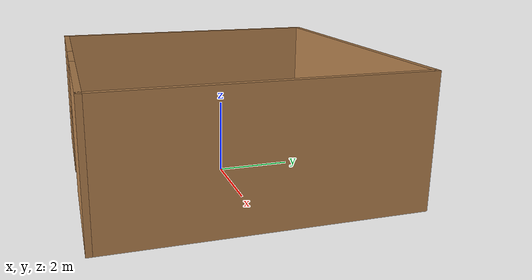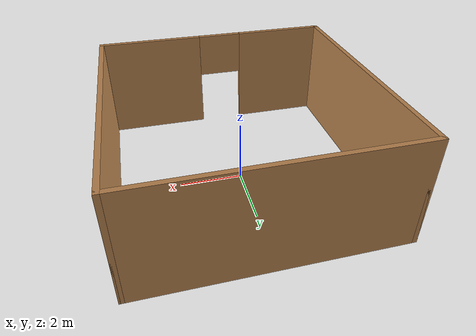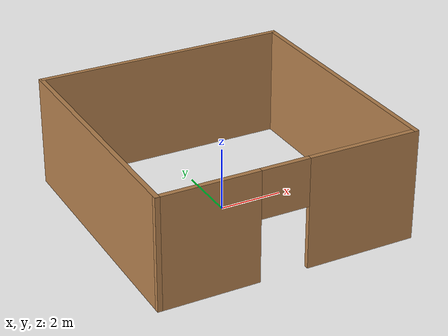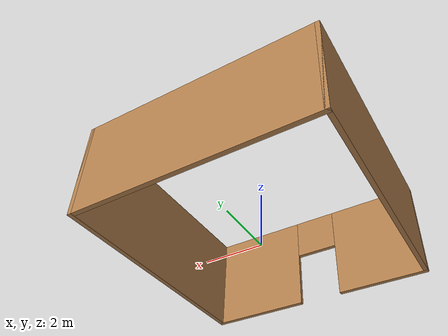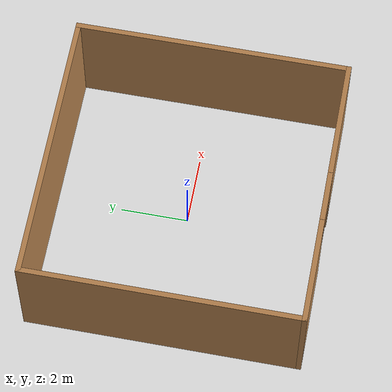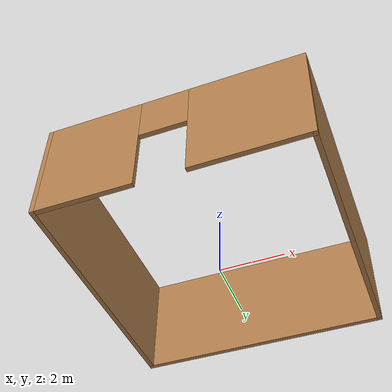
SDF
<?xml version='1.0'?>
<sdf version='1.6'>
  <model name='room_obs'>
    <pose frame=''>0 0 0 0 -0 0</pose>
    <link name='Wall_31'>
      <collision name='Wall_31_Collision'>
        <geometry>
          <box>
            <size>8.15 0.15 3.5</size>
          </box>
        </geometry>
        <pose frame=''>0 0 1.75 0 -0 0</pose>
      </collision>
      <visual name='Wall_31_Visual'>
        <pose frame=''>0 0 1.75 0 -0 0</pose>
        <geometry>
          <box>
            <size>8.15 0.15 3.5</size>
          </box>
        </geometry>
        <material>
          <script>
            <uri>file://media/materials/scripts/gazebo.material</uri>
            <name>Gazebo/Wood</name>
          </script>
          <ambient>1 1 1 1</ambient>
        </material>
        <meta>
          <layer>0</layer>
        </meta>
      </visual>
      <pose frame=''>0 4 0 0 -0 0</pose>
    </link>
    <link name='Wall_34'>
      <collision name='Wall_34_Collision'>
        <geometry>
          <box>
            <size>8.15 0.15 3.5</size>
          </box>
        </geometry>
        <pose frame=''>0 0 1.75 0 -0 0</pose>
      </collision>
      <visual name='Wall_34_Visual'>
        <pose frame=''>0 0 1.75 0 -0 0</pose>
        <geometry>
          <box>
            <size>8.15 0.15 3.5</size>
          </box>
        </geometry>
        <material>
          <script>
            <uri>file://media/materials/scripts/gazebo.material</uri>
            <name>Gazebo/Wood</name>
          </script>
          <ambient>1 1 1 1</ambient>
        </material>
        <meta>
          <layer>0</layer>
        </meta>
      </visual>
      <pose frame=''>4 0 0 0 -0 -1.5708</pose>
    </link>
    <link name='Wall_35'>
      <pose frame=''>0 -4 0 0 -0 3.14159</pose>
      <visual name='Wall_35_Visual_0'>
        <pose frame=''>-2.31574 0 1.75 0 -0 0</pose>
        <geometry>
          <box>
            <size>3.51851 0.15 3.5</size>
          </box>
        </geometry>
        <material>
          <script>
            <uri>file://media/materials/scripts/gazebo.material</uri>
            <name>Gazebo/Wood</name>
          </script>
          <ambient>1 1 1 1</ambient>
        </material>
        <meta>
          <layer>0</layer>
        </meta>
      </visual>
      <collision name='Wall_35_Collision_0'>
        <geometry>
          <box>
            <size>3.51851 0.15 3.5</size>
          </box>
        </geometry>
        <pose frame=''>-2.31574 0 1.75 0 -0 0</pose>
      </collision>
      <visual name='Wall_35_Visual_1'>
        <pose frame=''>2.50926 0 1.75 0 -0 0</pose>
        <geometry>
          <box>
            <size>3.13149 0.15 3.5</size>
          </box>
        </geometry>
        <material>
          <script>
            <uri>file://media/materials/scripts/gazebo.material</uri>
            <name>Gazebo/Wood</name>
          </script>
          <ambient>1 1 1 1</ambient>
        </material>
        <meta>
          <layer>0</layer>
        </meta>
      </visual>
      <collision name='Wall_35_Collision_1'>
        <geometry>
          <box>
            <size>3.13149 0.15 3.5</size>
          </box>
        </geometry>
        <pose frame=''>2.50926 0 1.75 0 -0 0</pose>
      </collision>
      <visual name='Wall_35_Visual_2'>
        <pose frame=''>0.193511 0 2.75 0 -0 0</pose>
        <geometry>
          <box>
            <size>1.5 0.15 1.5</size>
          </box>
        </geometry>
        <material>
          <script>
            <uri>file://media/materials/scripts/gazebo.material</uri>
            <name>Gazebo/Wood</name>
          </script>
          <ambient>1 1 1 1</ambient>
        </material>
        <meta>
          <layer>0</layer>
        </meta>
      </visual>
      <collision name='Wall_35_Collision_2'>
        <geometry>
          <box>
            <size>1.5 0.15 1.5</size>
          </box>
        </geometry>
        <pose frame=''>0.193511 0 2.75 0 -0 0</pose>
      </collision>
    </link>
    <link name='Wall_36'>
      <collision name='Wall_36_Collision'>
        <geometry>
          <box>
            <size>8.15 0.15 3.5</size>
          </box>
        </geometry>
        <pose frame=''>0 0 1.75 0 -0 0</pose>
      </collision>
      <visual name='Wall_36_Visual'>
        <pose frame=''>0 0 1.75 0 -0 0</pose>
        <geometry>
          <box>
            <size>8.15 0.15 3.5</size>
          </box>
        </geometry>
        <material>
          <script>
            <uri>file://media/materials/scripts/gazebo.material</uri>
            <name>Gazebo/Wood</name>
          </script>
          <ambient>1 1 1 1</ambient>
        </material>
        <meta>
          <layer>0</layer>
        </meta>
      </visual>
      <pose frame=''>-4 0 0 0 -0 1.5708</pose>
    </link>
    <static>1</static>
  </model>
</sdf>
